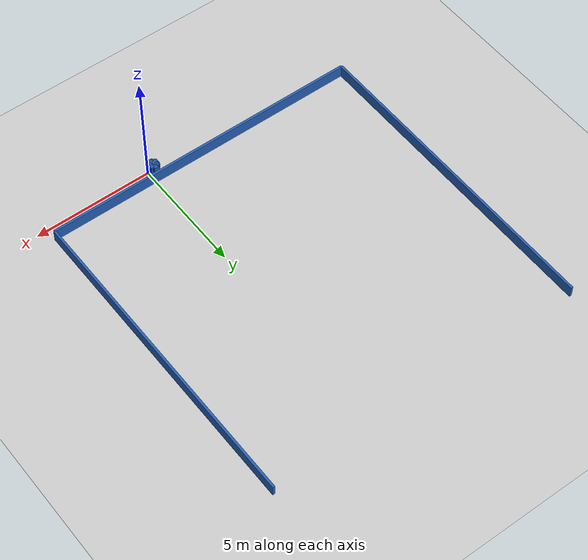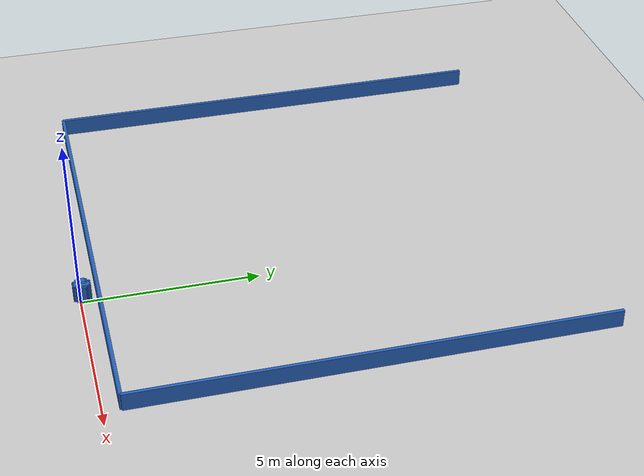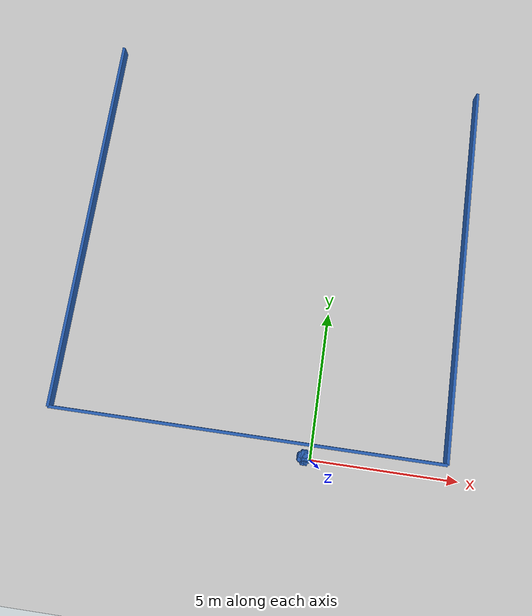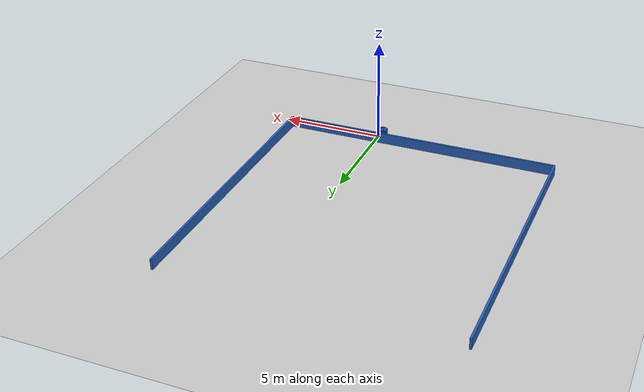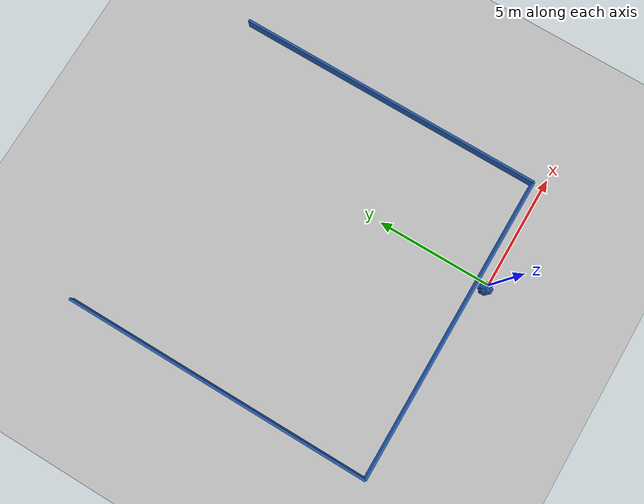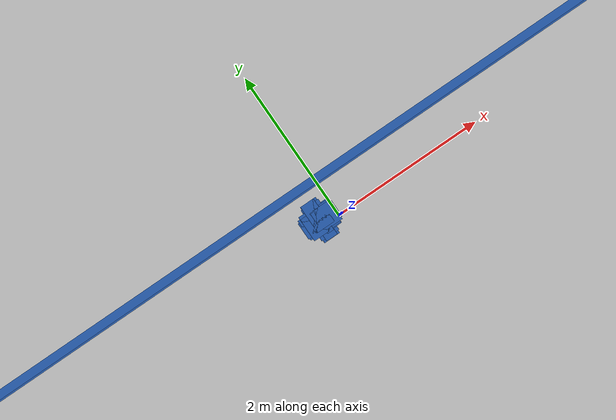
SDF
<?xml version="1.0" ?>
    <sdf version="1.5">
      <world name="default">
        <!-- A global light source -->
        <include>
          <uri>model://sun</uri>
        </include>
        <!-- A ground plane -->
        <include>
          <uri>model://ground_plane</uri>
        </include>

    <model name='libopen_space_final_T2B_61_88'>
      <static>1</static>
      <pose frame=''>-0.225000 0.075000 0.000000 0.000000 0.000000 0.000000</pose>
      <link name='link'>
        <inertial>
          <mass>1</mass>
          <inertia>
            <ixx>0.145833</ixx>
            <ixy>0</ixy>
            <ixz>0</ixz>
            <iyy>0.145833</iyy>
            <iyz>0</iyz>
            <izz>0.125</izz>
          </inertia>
        </inertial>
        <collision name='collision'>
          <geometry>
            <box>
              <size>0.15 0.49 1</size>
            </box>
          </geometry>
          <max_contacts>10</max_contacts>
          <surface>
            <contact>
              <ode/>
            </contact>
            <bounce/>
            <friction>
              <torsional>
                <ode/>
              </torsional>
              <ode/>
            </friction>
          </surface>
        </collision>
        <visual name='visual'>
          <geometry>
            <box>
              <size>0.15 0.49 1</size>
            </box>
          </geometry>
	    <material>
              <ambient>0.152000 0.379000 0.720000 1</ambient>
	      <diffuse>0.152000 0.379000 0.720000 1</diffuse>
          </material>
          <material>
            <script>
              <name>Gazebo/Grey</name>
              <uri>file://media/materials/scripts/gazebo.material</uri>
            </script>
          </material>
        </visual>
        <self_collide>0</self_collide>
        <kinematic>0</kinematic>
        <gravity>1</gravity>
      </link>
      <plugin name='libopen_space_final_T2B_61_88' filename='libopen_space_final_T2B_61_88.so'/>
    </model>

    <model name='libopen_space_final_T2B_114_22'>
      <static>1</static>
      <pose frame=''>-0.225000 0.075000 0.000000 0.000000 0.000000 0.000000</pose>
      <link name='link'>
        <inertial>
          <mass>1</mass>
          <inertia>
            <ixx>0.145833</ixx>
            <ixy>0</ixy>
            <ixz>0</ixz>
            <iyy>0.145833</iyy>
            <iyz>0</iyz>
            <izz>0.125</izz>
          </inertia>
        </inertial>
        <collision name='collision'>
          <geometry>
            <box>
              <size>0.21 0.24 1</size>
            </box>
          </geometry>
          <max_contacts>10</max_contacts>
          <surface>
            <contact>
              <ode/>
            </contact>
            <bounce/>
            <friction>
              <torsional>
                <ode/>
              </torsional>
              <ode/>
            </friction>
          </surface>
        </collision>
        <visual name='visual'>
          <geometry>
            <box>
              <size>0.21 0.24 1</size>
            </box>
          </geometry>
	    <material>
              <ambient>0.152000 0.379000 0.720000 1</ambient>
	      <diffuse>0.152000 0.379000 0.720000 1</diffuse>
          </material>
          <material>
            <script>
              <name>Gazebo/Grey</name>
              <uri>file://media/materials/scripts/gazebo.material</uri>
            </script>
          </material>
        </visual>
        <self_collide>0</self_collide>
        <kinematic>0</kinematic>
        <gravity>1</gravity>
      </link>
      <plugin name='libopen_space_final_T2B_114_22' filename='libopen_space_final_T2B_114_22.so'/>
    </model>

    <model name='libopen_space_final_T2B_77_58'>
      <static>1</static>
      <pose frame=''>-0.225000 0.075000 0.000000 0.000000 0.000000 0.000000</pose>
      <link name='link'>
        <inertial>
          <mass>1</mass>
          <inertia>
            <ixx>0.145833</ixx>
            <ixy>0</ixy>
            <ixz>0</ixz>
            <iyy>0.145833</iyy>
            <iyz>0</iyz>
            <izz>0.125</izz>
          </inertia>
        </inertial>
        <collision name='collision'>
          <geometry>
            <box>
              <size>0.26 0.21 1</size>
            </box>
          </geometry>
          <max_contacts>10</max_contacts>
          <surface>
            <contact>
              <ode/>
            </contact>
            <bounce/>
            <friction>
              <torsional>
                <ode/>
              </torsional>
              <ode/>
            </friction>
          </surface>
        </collision>
        <visual name='visual'>
          <geometry>
            <box>
              <size>0.26 0.21 1</size>
            </box>
          </geometry>
	    <material>
              <ambient>0.152000 0.379000 0.720000 1</ambient>
	      <diffuse>0.152000 0.379000 0.720000 1</diffuse>
          </material>
          <material>
            <script>
              <name>Gazebo/Grey</name>
              <uri>file://media/materials/scripts/gazebo.material</uri>
            </script>
          </material>
        </visual>
        <self_collide>0</self_collide>
        <kinematic>0</kinematic>
        <gravity>1</gravity>
      </link>
      <plugin name='libopen_space_final_T2B_77_58' filename='libopen_space_final_T2B_77_58.so'/>
    </model>

    <model name='libopen_space_final_T2B_79_93'>
      <static>1</static>
      <pose frame=''>-0.225000 0.075000 0.000000 0.000000 0.000000 0.000000</pose>
      <link name='link'>
        <inertial>
          <mass>1</mass>
          <inertia>
            <ixx>0.145833</ixx>
            <ixy>0</ixy>
            <ixz>0</ixz>
            <iyy>0.145833</iyy>
            <iyz>0</iyz>
            <izz>0.125</izz>
          </inertia>
        </inertial>
        <collision name='collision'>
          <geometry>
            <box>
              <size>0.47 0.22 1</size>
            </box>
          </geometry>
          <max_contacts>10</max_contacts>
          <surface>
            <contact>
              <ode/>
            </contact>
            <bounce/>
            <friction>
              <torsional>
                <ode/>
              </torsional>
              <ode/>
            </friction>
          </surface>
        </collision>
        <visual name='visual'>
          <geometry>
            <box>
              <size>0.47 0.22 1</size>
            </box>
          </geometry>
	    <material>
              <ambient>0.152000 0.379000 0.720000 1</ambient>
	      <diffuse>0.152000 0.379000 0.720000 1</diffuse>
          </material>
          <material>
            <script>
              <name>Gazebo/Grey</name>
              <uri>file://media/materials/scripts/gazebo.material</uri>
            </script>
          </material>
        </visual>
        <self_collide>0</self_collide>
        <kinematic>0</kinematic>
        <gravity>1</gravity>
      </link>
      <plugin name='libopen_space_final_T2B_79_93' filename='libopen_space_final_T2B_79_93.so'/>
    </model>

    <model name='libopen_space_final_T2B_80_70'>
      <static>1</static>
      <pose frame=''>-0.225000 0.075000 0.000000 0.000000 0.000000 0.000000</pose>
      <link name='link'>
        <inertial>
          <mass>1</mass>
          <inertia>
            <ixx>0.145833</ixx>
            <ixy>0</ixy>
            <ixz>0</ixz>
            <iyy>0.145833</iyy>
            <iyz>0</iyz>
            <izz>0.125</izz>
          </inertia>
        </inertial>
        <collision name='collision'>
          <geometry>
            <box>
              <size>0.14 0.36 1</size>
            </box>
          </geometry>
          <max_contacts>10</max_contacts>
          <surface>
            <contact>
              <ode/>
            </contact>
            <bounce/>
            <friction>
              <torsional>
                <ode/>
              </torsional>
              <ode/>
            </friction>
          </surface>
        </collision>
        <visual name='visual'>
          <geometry>
            <box>
              <size>0.14 0.36 1</size>
            </box>
          </geometry>
	    <material>
              <ambient>0.152000 0.379000 0.720000 1</ambient>
	      <diffuse>0.152000 0.379000 0.720000 1</diffuse>
          </material>
          <material>
            <script>
              <name>Gazebo/Grey</name>
              <uri>file://media/materials/scripts/gazebo.material</uri>
            </script>
          </material>
        </visual>
        <self_collide>0</self_collide>
        <kinematic>0</kinematic>
        <gravity>1</gravity>
      </link>
      <plugin name='libopen_space_final_T2B_80_70' filename='libopen_space_final_T2B_80_70.so'/>
    </model>

    <model name='libopen_space_final_T2B_90_95'>
      <static>1</static>
      <pose frame=''>-0.225000 0.075000 0.000000 0.000000 0.000000 0.000000</pose>
      <link name='link'>
        <inertial>
          <mass>1</mass>
          <inertia>
            <ixx>0.145833</ixx>
            <ixy>0</ixy>
            <ixz>0</ixz>
            <iyy>0.145833</iyy>
            <iyz>0</iyz>
            <izz>0.125</izz>
          </inertia>
        </inertial>
        <collision name='collision'>
          <geometry>
            <box>
              <size>0.38 0.33 1</size>
            </box>
          </geometry>
          <max_contacts>10</max_contacts>
          <surface>
            <contact>
              <ode/>
            </contact>
            <bounce/>
            <friction>
              <torsional>
                <ode/>
              </torsional>
              <ode/>
            </friction>
          </surface>
        </collision>
        <visual name='visual'>
          <geometry>
            <box>
              <size>0.38 0.33 1</size>
            </box>
          </geometry>
	    <material>
              <ambient>0.152000 0.379000 0.720000 1</ambient>
	      <diffuse>0.152000 0.379000 0.720000 1</diffuse>
          </material>
          <material>
            <script>
              <name>Gazebo/Grey</name>
              <uri>file://media/materials/scripts/gazebo.material</uri>
            </script>
          </material>
        </visual>
        <self_collide>0</self_collide>
        <kinematic>0</kinematic>
        <gravity>1</gravity>
      </link>
      <plugin name='libopen_space_final_T2B_90_95' filename='libopen_space_final_T2B_90_95.so'/>
    </model>

    <model name='libopen_space_final_T2B_51_1'>
      <static>1</static>
      <pose frame=''>-0.225000 0.075000 0.000000 0.000000 0.000000 0.000000</pose>
      <link name='link'>
        <inertial>
          <mass>1</mass>
          <inertia>
            <ixx>0.145833</ixx>
            <ixy>0</ixy>
            <ixz>0</ixz>
            <iyy>0.145833</iyy>
            <iyz>0</iyz>
            <izz>0.125</izz>
          </inertia>
        </inertial>
        <collision name='collision'>
          <geometry>
            <box>
              <size>0.30 0.12 1</size>
            </box>
          </geometry>
          <max_contacts>10</max_contacts>
          <surface>
            <contact>
              <ode/>
            </contact>
            <bounce/>
            <friction>
              <torsional>
                <ode/>
              </torsional>
              <ode/>
            </friction>
          </surface>
        </collision>
        <visual name='visual'>
          <geometry>
            <box>
              <size>0.30 0.12 1</size>
            </box>
          </geometry>
	    <material>
              <ambient>0.152000 0.379000 0.720000 1</ambient>
	      <diffuse>0.152000 0.379000 0.720000 1</diffuse>
          </material>
          <material>
            <script>
              <name>Gazebo/Grey</name>
              <uri>file://media/materials/scripts/gazebo.material</uri>
            </script>
          </material>
        </visual>
        <self_collide>0</self_collide>
        <kinematic>0</kinematic>
        <gravity>1</gravity>
      </link>
      <plugin name='libopen_space_final_T2B_51_1' filename='libopen_space_final_T2B_51_1.so'/>
    </model>

    <model name='libopen_space_final_T2B_96_80'>
      <static>1</static>
      <pose frame=''>-0.225000 0.075000 0.000000 0.000000 0.000000 0.000000</pose>
      <link name='link'>
        <inertial>
          <mass>1</mass>
          <inertia>
            <ixx>0.145833</ixx>
            <ixy>0</ixy>
            <ixz>0</ixz>
            <iyy>0.145833</iyy>
            <iyz>0</iyz>
            <izz>0.125</izz>
          </inertia>
        </inertial>
        <collision name='collision'>
          <geometry>
            <box>
              <size>0.37 0.31 1</size>
            </box>
          </geometry>
          <max_contacts>10</max_contacts>
          <surface>
            <contact>
              <ode/>
            </contact>
            <bounce/>
            <friction>
              <torsional>
                <ode/>
              </torsional>
              <ode/>
            </friction>
          </surface>
        </collision>
        <visual name='visual'>
          <geometry>
            <box>
              <size>0.37 0.31 1</size>
            </box>
          </geometry>
	    <material>
              <ambient>0.152000 0.379000 0.720000 1</ambient>
	      <diffuse>0.152000 0.379000 0.720000 1</diffuse>
          </material>
          <material>
            <script>
              <name>Gazebo/Grey</name>
              <uri>file://media/materials/scripts/gazebo.material</uri>
            </script>
          </material>
        </visual>
        <self_collide>0</self_collide>
        <kinematic>0</kinematic>
        <gravity>1</gravity>
      </link>
      <plugin name='libopen_space_final_T2B_96_80' filename='libopen_space_final_T2B_96_80.so'/>
    </model>

    <model name='libopen_space_final_T2B_103_85'>
      <static>1</static>
      <pose frame=''>-0.225000 0.075000 0.000000 0.000000 0.000000 0.000000</pose>
      <link name='link'>
        <inertial>
          <mass>1</mass>
          <inertia>
            <ixx>0.145833</ixx>
            <ixy>0</ixy>
            <ixz>0</ixz>
            <iyy>0.145833</iyy>
            <iyz>0</iyz>
            <izz>0.125</izz>
          </inertia>
        </inertial>
        <collision name='collision'>
          <geometry>
            <box>
              <size>0.24 0.43 1</size>
            </box>
          </geometry>
          <max_contacts>10</max_contacts>
          <surface>
            <contact>
              <ode/>
            </contact>
            <bounce/>
            <friction>
              <torsional>
                <ode/>
              </torsional>
              <ode/>
            </friction>
          </surface>
        </collision>
        <visual name='visual'>
          <geometry>
            <box>
              <size>0.24 0.43 1</size>
            </box>
          </geometry>
	    <material>
              <ambient>0.152000 0.379000 0.720000 1</ambient>
	      <diffuse>0.152000 0.379000 0.720000 1</diffuse>
          </material>
          <material>
            <script>
              <name>Gazebo/Grey</name>
              <uri>file://media/materials/scripts/gazebo.material</uri>
            </script>
          </material>
        </visual>
        <self_collide>0</self_collide>
        <kinematic>0</kinematic>
        <gravity>1</gravity>
      </link>
      <plugin name='libopen_space_final_T2B_103_85' filename='libopen_space_final_T2B_103_85.so'/>
    </model>

    <model name='libopen_space_final_T2B_145_37'>
      <static>1</static>
      <pose frame=''>-0.225000 0.075000 0.000000 0.000000 0.000000 0.000000</pose>
      <link name='link'>
        <inertial>
          <mass>1</mass>
          <inertia>
            <ixx>0.145833</ixx>
            <ixy>0</ixy>
            <ixz>0</ixz>
            <iyy>0.145833</iyy>
            <iyz>0</iyz>
            <izz>0.125</izz>
          </inertia>
        </inertial>
        <collision name='collision'>
          <geometry>
            <box>
              <size>0.44 0.27 1</size>
            </box>
          </geometry>
          <max_contacts>10</max_contacts>
          <surface>
            <contact>
              <ode/>
            </contact>
            <bounce/>
            <friction>
              <torsional>
                <ode/>
              </torsional>
              <ode/>
            </friction>
          </surface>
        </collision>
        <visual name='visual'>
          <geometry>
            <box>
              <size>0.44 0.27 1</size>
            </box>
          </geometry>
	    <material>
              <ambient>0.152000 0.379000 0.720000 1</ambient>
	      <diffuse>0.152000 0.379000 0.720000 1</diffuse>
          </material>
          <material>
            <script>
              <name>Gazebo/Grey</name>
              <uri>file://media/materials/scripts/gazebo.material</uri>
            </script>
          </material>
        </visual>
        <self_collide>0</self_collide>
        <kinematic>0</kinematic>
        <gravity>1</gravity>
      </link>
      <plugin name='libopen_space_final_T2B_145_37' filename='libopen_space_final_T2B_145_37.so'/>
    </model>

    <model name='libopen_space_final_T2B_109_60'>
      <static>1</static>
      <pose frame=''>-0.225000 0.075000 0.000000 0.000000 0.000000 0.000000</pose>
      <link name='link'>
        <inertial>
          <mass>1</mass>
          <inertia>
            <ixx>0.145833</ixx>
            <ixy>0</ixy>
            <ixz>0</ixz>
            <iyy>0.145833</iyy>
            <iyz>0</iyz>
            <izz>0.125</izz>
          </inertia>
        </inertial>
        <collision name='collision'>
          <geometry>
            <box>
              <size>0.21 0.50 1</size>
            </box>
          </geometry>
          <max_contacts>10</max_contacts>
          <surface>
            <contact>
              <ode/>
            </contact>
            <bounce/>
            <friction>
              <torsional>
                <ode/>
              </torsional>
              <ode/>
            </friction>
          </surface>
        </collision>
        <visual name='visual'>
          <geometry>
            <box>
              <size>0.21 0.50 1</size>
            </box>
          </geometry>
	    <material>
              <ambient>0.152000 0.379000 0.720000 1</ambient>
	      <diffuse>0.152000 0.379000 0.720000 1</diffuse>
          </material>
          <material>
            <script>
              <name>Gazebo/Grey</name>
              <uri>file://media/materials/scripts/gazebo.material</uri>
            </script>
          </material>
        </visual>
        <self_collide>0</self_collide>
        <kinematic>0</kinematic>
        <gravity>1</gravity>
      </link>
      <plugin name='libopen_space_final_T2B_109_60' filename='libopen_space_final_T2B_109_60.so'/>
    </model>

    <model name='libopen_space_final_T2B_147_27'>
      <static>1</static>
      <pose frame=''>-0.225000 0.075000 0.000000 0.000000 0.000000 0.000000</pose>
      <link name='link'>
        <inertial>
          <mass>1</mass>
          <inertia>
            <ixx>0.145833</ixx>
            <ixy>0</ixy>
            <ixz>0</ixz>
            <iyy>0.145833</iyy>
            <iyz>0</iyz>
            <izz>0.125</izz>
          </inertia>
        </inertial>
        <collision name='collision'>
          <geometry>
            <box>
              <size>0.11 0.24 1</size>
            </box>
          </geometry>
          <max_contacts>10</max_contacts>
          <surface>
            <contact>
              <ode/>
            </contact>
            <bounce/>
            <friction>
              <torsional>
                <ode/>
              </torsional>
              <ode/>
            </friction>
          </surface>
        </collision>
        <visual name='visual'>
          <geometry>
            <box>
              <size>0.11 0.24 1</size>
            </box>
          </geometry>
	    <material>
              <ambient>0.152000 0.379000 0.720000 1</ambient>
	      <diffuse>0.152000 0.379000 0.720000 1</diffuse>
          </material>
          <material>
            <script>
              <name>Gazebo/Grey</name>
              <uri>file://media/materials/scripts/gazebo.material</uri>
            </script>
          </material>
        </visual>
        <self_collide>0</self_collide>
        <kinematic>0</kinematic>
        <gravity>1</gravity>
      </link>
      <plugin name='libopen_space_final_T2B_147_27' filename='libopen_space_final_T2B_147_27.so'/>
    </model>

    <model name='libopen_space_final_T2B_87_56'>
      <static>1</static>
      <pose frame=''>-0.225000 0.075000 0.000000 0.000000 0.000000 0.000000</pose>
      <link name='link'>
        <inertial>
          <mass>1</mass>
          <inertia>
            <ixx>0.145833</ixx>
            <ixy>0</ixy>
            <ixz>0</ixz>
            <iyy>0.145833</iyy>
            <iyz>0</iyz>
            <izz>0.125</izz>
          </inertia>
        </inertial>
        <collision name='collision'>
          <geometry>
            <box>
              <size>0.37 0.26 1</size>
            </box>
          </geometry>
          <max_contacts>10</max_contacts>
          <surface>
            <contact>
              <ode/>
            </contact>
            <bounce/>
            <friction>
              <torsional>
                <ode/>
              </torsional>
              <ode/>
            </friction>
          </surface>
        </collision>
        <visual name='visual'>
          <geometry>
            <box>
              <size>0.37 0.26 1</size>
            </box>
          </geometry>
	    <material>
              <ambient>0.152000 0.379000 0.720000 1</ambient>
	      <diffuse>0.152000 0.379000 0.720000 1</diffuse>
          </material>
          <material>
            <script>
              <name>Gazebo/Grey</name>
              <uri>file://media/materials/scripts/gazebo.material</uri>
            </script>
          </material>
        </visual>
        <self_collide>0</self_collide>
        <kinematic>0</kinematic>
        <gravity>1</gravity>
      </link>
      <plugin name='libopen_space_final_T2B_87_56' filename='libopen_space_final_T2B_87_56.so'/>
    </model>

    <model name='libopen_space_final_T2B_126_78'>
      <static>1</static>
      <pose frame=''>-0.225000 0.075000 0.000000 0.000000 0.000000 0.000000</pose>
      <link name='link'>
        <inertial>
          <mass>1</mass>
          <inertia>
            <ixx>0.145833</ixx>
            <ixy>0</ixy>
            <ixz>0</ixz>
            <iyy>0.145833</iyy>
            <iyz>0</iyz>
            <izz>0.125</izz>
          </inertia>
        </inertial>
        <collision name='collision'>
          <geometry>
            <box>
              <size>0.11 0.22 1</size>
            </box>
          </geometry>
          <max_contacts>10</max_contacts>
          <surface>
            <contact>
              <ode/>
            </contact>
            <bounce/>
            <friction>
              <torsional>
                <ode/>
              </torsional>
              <ode/>
            </friction>
          </surface>
        </collision>
        <visual name='visual'>
          <geometry>
            <box>
              <size>0.11 0.22 1</size>
            </box>
          </geometry>
	    <material>
              <ambient>0.152000 0.379000 0.720000 1</ambient>
	      <diffuse>0.152000 0.379000 0.720000 1</diffuse>
          </material>
          <material>
            <script>
              <name>Gazebo/Grey</name>
              <uri>file://media/materials/scripts/gazebo.material</uri>
            </script>
          </material>
        </visual>
        <self_collide>0</self_collide>
        <kinematic>0</kinematic>
        <gravity>1</gravity>
      </link>
      <plugin name='libopen_space_final_T2B_126_78' filename='libopen_space_final_T2B_126_78.so'/>
    </model>

        <model name='bottom_wall'>
          <static>1</static>
          <pose frame=''>-2.25 0.5 0.000000 0.000000 0.000000 1.57079632</pose>
          <link name='link'>
            <inertial>
            <mass>1</mass>
            <inertia>
              <ixx>0.145833</ixx>
              <ixy>0</ixy>
              <ixz>0</ixz>
              <iyy>0.145833</iyy>
              <iyz>0</iyz>
              <izz>0.125</izz>
            </inertia>
            </inertial>
            <collision name='collision'>
            <geometry>
              <box>
              <size>0.1 13.5 1</size>
              </box>
            </geometry>
            <max_contacts>10</max_contacts>
            <surface>
              <contact>
              <ode/>
              </contact>
              <bounce/>
              <friction>
              <torsional>
                <ode/>
              </torsional>
              <ode/>
              </friction>
            </surface>
            </collision>
            <visual name='visual'>
            <geometry>
              <box>
              <size>0.1 13.5 1</size>
              </box>
            </geometry>
            <material>
              <ambient>0.152000 0.379000 0.720000 1</ambient>
            <diffuse>0.152000 0.379000 0.720000 1</diffuse>
            </material>
            <material>
              <script>
              <name>Gazebo/Grey</name>
              <uri>file://media/materials/scripts/gazebo.material</uri>
              </script>
            </material>
            </visual>
            <self_collide>0</self_collide>
            <kinematic>0</kinematic>
            <gravity>1</gravity>
          </link>
        </model>

        <model name='left_wall'>
          <static>1</static>
          <pose frame=''>-9 7.25 0.000000 0.000000 0.000000 0.000000</pose>
          <link name='link'>
            <inertial>
            <mass>1</mass>
            <inertia>
              <ixx>0.145833</ixx>
              <ixy>0</ixy>
              <ixz>0</ixz>
              <iyy>0.145833</iyy>
              <iyz>0</iyz>
              <izz>0.125</izz>
            </inertia>
            </inertial>
            <collision name='collision'>
            <geometry>
              <box>
              <size>0.1 13.5 1</size>
              </box>
            </geometry>
            <max_contacts>10</max_contacts>
            <surface>
              <contact>
              <ode/>
              </contact>
              <bounce/>
              <friction>
              <torsional>
                <ode/>
              </torsional>
              <ode/>
              </friction>
            </surface>
            </collision>
            <visual name='visual'>
            <geometry>
              <box>
              <size>0.1 13.5 1</size>
              </box>
            </geometry>
            <material>
              <ambient>0.152000 0.379000 0.720000 1</ambient>
            <diffuse>0.152000 0.379000 0.720000 1</diffuse>
            </material>
            <material>
              <script>
              <name>Gazebo/Grey</name>
              <uri>file://media/materials/scripts/gazebo.material</uri>
              </script>
            </material>
            </visual>
            <self_collide>0</self_collide>
            <kinematic>0</kinematic>
            <gravity>1</gravity>
          </link>
        </model>

        <model name='right_wall'>
          <static>1</static>
          <pose frame=''>4.5 7.25 0.000000 0.000000 0.000000 0.000000</pose>
          <link name='link'>
            <inertial>
            <mass>1</mass>
            <inertia>
              <ixx>0.145833</ixx>
              <ixy>0</ixy>
              <ixz>0</ixz>
              <iyy>0.145833</iyy>
              <iyz>0</iyz>
              <izz>0.125</izz>
            </inertia>
            </inertial>
            <collision name='collision'>
            <geometry>
              <box>
              <size>0.1 13.5 1</size>
              </box>
            </geometry>
            <max_contacts>10</max_contacts>
            <surface>
              <contact>
              <ode/>
              </contact>
              <bounce/>
              <friction>
              <torsional>
                <ode/>
              </torsional>
              <ode/>
              </friction>
            </surface>
            </collision>
            <visual name='visual'>
            <geometry>
              <box>
              <size>0.1 13.5 1</size>
              </box>
            </geometry>
            <material>
              <ambient>0.152000 0.379000 0.720000 1</ambient>
            <diffuse>0.152000 0.379000 0.720000 1</diffuse>
            </material>
            <material>
              <script>
              <name>Gazebo/Grey</name>
              <uri>file://media/materials/scripts/gazebo.material</uri>
              </script>
            </material>
            </visual>
            <self_collide>0</self_collide>
            <kinematic>0</kinematic>
            <gravity>1</gravity>
          </link>
        </model>

      </world>
    </sdf>"
